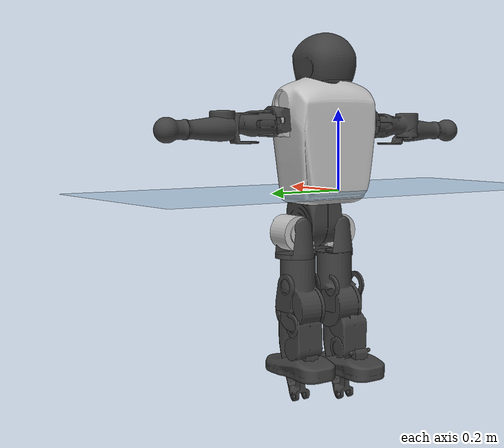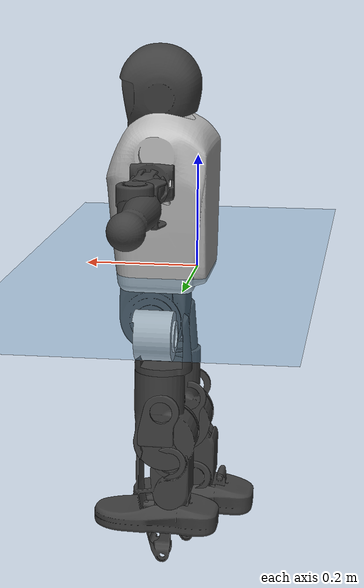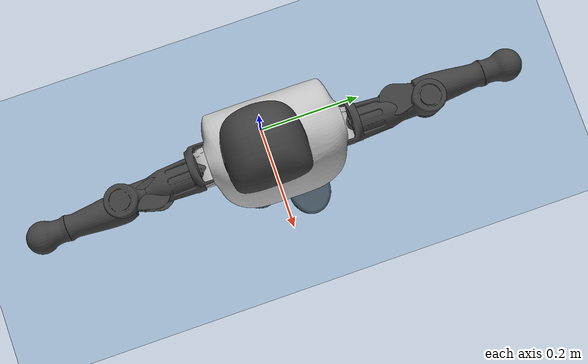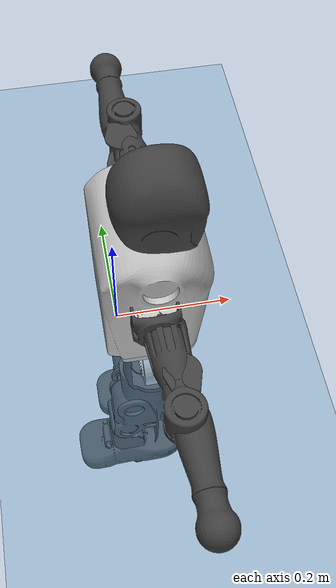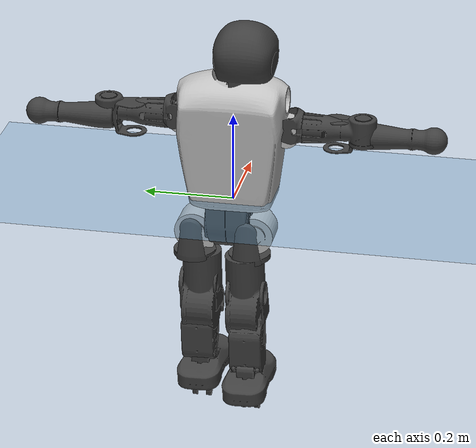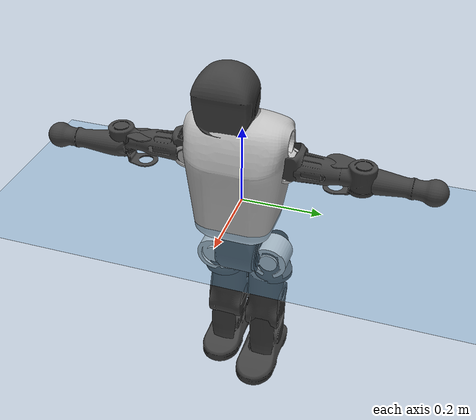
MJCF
<mujoco model="T1">
  <compiler angle="radian" assetdir="assets" balanceinertia="true" inertiafromgeom="false"/>

  <option timestep="0.005" density="1.2" viscosity="2e-05"/>

  <size nkey="1"/>

  <visual>
    <quality shadowsize="8192"/>
    <map shadowclip="0.5"/>
  </visual>

  <default>
    <default class="/">
      <joint armature="0.01" damping="0.01" frictionloss="0.1"/>
      <geom contype="0" conaffinity="0" group="1" solref="-1000 -80"/>
      <site size="0.01 0.005 0.005" group="5"/>
      <general forcelimited="true" biastype="affine" gainprm="25" biasprm="0 -25 -0.6"/>
      <default class="t1">
        <geom rgba="0.25 0.25 0.25 1"/>
        <default class="visual">
          <geom type="mesh" group="2"/>
        </default>
        <default class="collision">
          <geom group="3"/>
        </default>
        <default class="foot">
          <geom size="0.1115 0.05 0.015" type="box" condim="6" group="4" priority="1" solimp="0.015 1 0.015"/>
        </default>
        <default class="reward_collision_sphere">
          <geom group="5" rgba="1 0 0 1"/>
        </default>
      </default>
    </default>
  </default>

  <asset>
    <texture type="skybox" colorspace="auto" name="//unnamed_texture_0" builtin="gradient" rgb1="0.95 0.95 0.95" rgb2="0.95 0.95 0.95" width="100" height="600"/>
    <texture type="2d" colorspace="auto" name="texplane" builtin="checker" rgb1="0.345 0.575 0.748" rgb2="0.345 0.575 0.748" markrgb="1 1 1" width="512" height="512"/>
    <material name="MatPlane" class="/" texture="texplane" texuniform="true" texrepeat="2 2" specular="0.9"/>
    <mesh name="Trunk" class="/" file="Trunk.stl"/>
    <mesh name="H1" class="/" file="H1.stl"/>
    <mesh name="H2" class="/" file="H2.stl"/>
    <mesh name="AL1" class="/" file="AL1.stl"/>
    <mesh name="AL2" class="/" file="AL2.stl"/>
    <mesh name="AL3" class="/" file="AL3.stl"/>
    <mesh name="left_hand_link" class="/" file="left_hand_link.stl"/>
    <mesh name="AR1" class="/" file="AR1.stl"/>
    <mesh name="AR2" class="/" file="AR2.stl"/>
    <mesh name="AR3" class="/" file="AR3.stl"/>
    <mesh name="right_hand_link" class="/" file="right_hand_link.stl"/>
    <mesh name="Waist" class="/" file="Waist.stl"/>
    <mesh name="Hip_Pitch_Left" class="/" file="Hip_Pitch_Left.stl"/>
    <mesh name="Hip_Roll_Left" class="/" file="Hip_Roll_Left.stl"/>
    <mesh name="Hip_Yaw_Left" class="/" file="Hip_Yaw_Left.stl"/>
    <mesh name="Shank_Left" class="/" file="Shank_Left.stl"/>
    <mesh name="Ankle_Cross_Left" class="/" file="Ankle_Cross_Left.stl"/>
    <mesh name="left_foot_link" class="/" file="left_foot_link.stl"/>
    <mesh name="Hip_Pitch_Right" class="/" file="Hip_Pitch_Right.stl"/>
    <mesh name="Hip_Roll_Right" class="/" file="Hip_Roll_Right.stl"/>
    <mesh name="Hip_Yaw_Right" class="/" file="Hip_Yaw_Right.stl"/>
    <mesh name="Shank_Right" class="/" file="Shank_Right.stl"/>
    <mesh name="Ankle_Cross_Right" class="/" file="Ankle_Cross_Right.stl"/>
    <mesh name="right_foot_link" class="/" file="right_foot_link.stl"/>
  </asset>

  <worldbody>
    <geom name="floor" class="/" size="100 100 0.125" type="plane" group="0" material="MatPlane"/>
    <light name="toplight_shadow" class="/" pos="0 0 5" dir="0.0990148 0.0990148 -0.990148" type="directional" ambient="0.04 0.04 0.04" diffuse="0.55 0.55 0.55" specular="0.12 0.12 0.12"/>
    <light name="toplight_fill" class="/" pos="0 0 5" dir="0.0990148 0.0990148 -0.990148" type="directional" castshadow="false" ambient="0.04 0.04 0.04" diffuse="0.3 0.3 0.3" specular="0.08 0.08 0.08"/>
    <body name="trunk" childclass="t1" pos="0.00167582 0.008754 0.000838728" quat="0.999974 -0.0056006 -0.00447916 -0.00121325">
      <inertial pos="0.0638085 0.0124166 0.0796575" quat="0.999883 -0.00344867 -0.0116169 0.0093115" mass="5.77432" diaginertia="0.0699323 0.0108581 0.00933932"/>
      <joint name="//unnamed_joint_0" type="free" armature="0" damping="0" frictionloss="0"/>
      <geom name="//unnamed_geom_1" class="visual" rgba="0.76 0.76 0.76 1" mesh="Trunk"/>
      <geom name="//unnamed_geom_2" class="collision" size="0.05714 0.0761867 0.11428" pos="0.056501 0 0.0814155" type="box"/>
      <geom name="//unnamed_geom_3" class="reward_collision_sphere" size="0.0876147" pos="0.056501 0 0.0678463"/>
      <geom name="//unnamed_geom_4" class="reward_collision_sphere" size="0.011428" pos="0.056501 0.0565637 0"/>
      <geom name="//unnamed_geom_5" class="reward_collision_sphere" size="0.011428" pos="0.056501 -0.0565637 0"/>
      <geom name="//unnamed_geom_6" class="reward_collision_sphere" size="0.011428" pos="0.056501 0.0712037 0.122123"/>
      <geom name="//unnamed_geom_7" class="reward_collision_sphere" size="0.011428" pos="0.056501 -0.0712037 0.122123"/>
      <site name="imu" pos="-0.0550556 -0.0249217 0.0552087" size="0.00761867"/>
      <camera name="track" pos="0 -1.33091 0" quat="0.707107 0.707107 0 0" mode="trackcom"/>
      <camera name="ego_camera" pos="0.114885 0 0.284954" quat="-0.5 -0.5 0.5 0.5"/>
      <body name="H1" pos="0.0657679 -0.00847516 0.159289" quat="0.999993 0.00129725 0.00215054 0.00282338">
        <inertial pos="0.00880375 -0.0162727 0.0307122" quat="0.760106 -0.0250127 0.0721837 0.645292" mass="0.202991" diaginertia="0.000186144 3.21329e-05 2.94683e-05"/>
        <joint name="AAHead_yaw" pos="0 0 0" axis="-0.0707373 -0.0133225 0.997406" range="-1.45504 1.65211" armature="0.0111552" damping="0" frictionloss="0.0749154"/>
        <geom name="//unnamed_geom_8" class="visual" mesh="H1"/>
        <body name="H2" pos="-0.0107753 -0.0147033 0.0433477" quat="0.999998 0.000340048 -0.00086447 -0.00177121">
          <inertial pos="0.00656418 -0.0130272 0.0689131" quat="0.988365 0.100854 -0.0638606 -0.0942643" mass="0.288599" diaginertia="0.001293 0.000239005 0.000257381"/>
          <joint name="Head_pitch" pos="0 0 0" axis="0.036936 -0.999283 0.00833811" range="-1.19684 0.350546" armature="0.0131979" damping="0" frictionloss="0.0130165"/>
          <geom name="//unnamed_geom_9" class="visual" mesh="H2"/>
          <geom name="//unnamed_geom_10" class="collision" size="0.0609493" pos="0.00941683 0 0.0746309"/>
          <geom name="//unnamed_geom_11" class="reward_collision_sphere" size="0.068568" pos="0.0188337 0 0.0678463"/>
        </body>
      </body>
      <body name="AL1" pos="0.0621105 0.0687178 0.163711" quat="1 0.000266513 6.55927e-05 -7.94994e-05">
        <inertial pos="0.0142578 0.0270445 0.00462705" quat="0.515675 0.493351 -0.501492 0.48907" mass="0.247855" diaginertia="0.00105786 0.000175384 5.06768e-05"/>
        <joint name="Left_Shoulder_Pitch" pos="0 0 0" axis="-0.07118 0.997196 -0.0231097" range="-3.30807 1.39735" armature="0.0091814" damping="0" frictionloss="0.0751216"/>
        <geom name="//unnamed_geom_12" class="visual" rgba="0.76 0.76 0.76 1" mesh="AL1"/>
        <body name="AL2" pos="-0.00295121 0.0295055 0.0110984" quat="1 -0.000314996 -0.000316245 2.45158e-05">
          <inertial pos="-0.0052964 0.0341445 0.0128687" quat="0.458696 0.55926 -0.487023 0.489525" mass="0.0637801" diaginertia="0.000290833 4.46257e-05 2.44092e-05"/>
          <joint name="Left_Shoulder_Roll" pos="0 0 0" axis="-0.999078 0.0141821 0.0405277" range="-1.54589 1.671" armature="0.00718842" damping="0" frictionloss="0.0769846"/>
          <geom name="//unnamed_geom_13" class="visual" mesh="AL2"/>
          <body name="AL3" pos="0.00369363 0.040695 -0.00756958" quat="1 -0.000104738 0.000748158 9.7703e-05">
            <inertial pos="0.00961975 0.057095 -0.00318248" quat="0.692063 0.71809 -0.0601631 0.0421363" mass="0.47257" diaginertia="0.00895652 0.00177281 0.000113371"/>
            <joint name="Left_Elbow_Pitch" pos="0 0 0" axis="-0.00402797 -0.99994 -0.0101912" range="-2.14466 2.34649" armature="0.00759122" damping="0" frictionloss="0.0173204"/>
            <geom name="//unnamed_geom_14" class="visual" mesh="AL3"/>
            <geom name="//unnamed_geom_15" class="collision" size="0.022856 0.05714" pos="0 0.0332728 0" quat="0.707105 0.707108 0 0" type="cylinder"/>
            <geom name="//unnamed_geom_16" class="reward_collision_sphere" size="0.0274272"/>
            <body name="left_hand_link" pos="-0.0135049 0.087431 -0.010395" quat="0.999998 -0.000934356 -0.0014238 -0.00124946">
              <inertial pos="-0.0137575 0.0838483 0.0135619" quat="0.693051 0.720443 0.000772567 -0.0253324" mass="0.142005" diaginertia="0.00598624 0.000987535 2.59421e-05"/>
              <joint name="Left_Elbow_Yaw" pos="0 0 0" axis="0.0107371 0.00702324 0.999918" stiffness="0.0410692" range="-2.43009 0.101965" armature="0.00321947" damping="0" frictionloss="0.0756895"/>
              <geom name="//unnamed_geom_17" class="visual" mesh="left_hand_link"/>
              <geom name="//unnamed_geom_18" class="collision" size="0.022856 0.0666633" pos="0 0.0865092 0" quat="0.707105 0.707108 0 0" type="cylinder"/>
              <geom name="//unnamed_geom_19" class="reward_collision_sphere" size="0.0380933"/>
              <geom name="//unnamed_geom_20" class="reward_collision_sphere" size="0.0266653" pos="0 0.0732001 0"/>
              <geom name="//unnamed_geom_21" class="reward_collision_sphere" size="0.0266653" pos="0 0.143073 0"/>
            </body>
          </body>
        </body>
      </body>
      <body name="AR1" pos="0.0525225 -0.0745103 0.14912" quat="0.999964 0.00492186 0.00427769 0.00549484">
        <inertial pos="-0.000821969 -0.0223522 -0.00789546" quat="0.505637 0.494106 -0.502124 0.498058" mass="0.19244" diaginertia="0.0009443 0.000141167 3.37225e-05"/>
        <joint name="Right_Shoulder_Pitch" pos="0 0 0" axis="0.0208706 -0.999634 -0.017193" range="-1.4278 3.30886" armature="0.010064" damping="0.00519224" frictionloss="0.106682"/>
        <geom name="//unnamed_geom_22" class="visual" rgba="0.76 0.76 0.76 1" mesh="AR1"/>
        <body name="AR2" pos="-0.00664885 -0.0268432 0.0148556" quat="0.99998 0.000775953 0.00371422 0.00506696">
          <inertial pos="0.0108883 -0.0322983 0.00619839" quat="0.473883 0.495081 -0.549942 0.477383" mass="0.0796277" diaginertia="0.000334536 4.54646e-05 2.89068e-05"/>
          <joint name="Right_Shoulder_Roll" pos="0 0 0" axis="-0.998596 -0.0237523 -0.0473545" stiffness="0.0527403" range="-1.57447 1.74119" armature="0.00779665" damping="0.0700163" frictionloss="0.0889401"/>
          <geom name="//unnamed_geom_23" class="visual" mesh="AR2"/>
          <body name="AR3" pos="0.00995284 -0.0397942 -0.00668537" quat="0.999977 0.000919314 0.00429243 0.00519613">
            <inertial pos="-0.0165275 -0.0584587 -0.00755048" quat="0.713011 0.700857 -0.000892455 0.0203556" mass="0.427843" diaginertia="0.00712349 0.00145918 7.9622e-05"/>
            <joint name="Right_Elbow_Pitch" pos="0 0 0" axis="0.00972997 0.99891 -0.0456584" stiffness="0.0200862" range="-2.12746 2.60867" armature="0.00634993" damping="0" frictionloss="0.0433304"/>
            <geom name="//unnamed_geom_24" class="visual" mesh="AR3"/>
            <geom name="//unnamed_geom_25" class="collision" size="0.022856 0.05714" pos="0 -0.0332728 0" quat="0.707105 0.707108 0 0" type="cylinder"/>
            <geom name="//unnamed_geom_26" class="reward_collision_sphere" size="0.0274272"/>
            <body name="right_hand_link" pos="0.00864393 -0.0874275 -0.013245" quat="0.99998 0.0022032 -0.0057246 0.00158597">
              <inertial pos="-0.0154926 -0.0795495 0.0141559" quat="0.70616 0.708052 4.51475e-05 -1.60034e-05" mass="0.160925" diaginertia="0.00878314 0.0014413 3.03478e-05"/>
              <joint name="Right_Elbow_Yaw" pos="0 0 0" axis="0.00075466 -0.00247281 0.999997" stiffness="0.0214216" range="-0.0295604 2.71133" armature="0.00993555" damping="0" frictionloss="0.078184"/>
              <geom name="//unnamed_geom_27" class="visual" mesh="right_hand_link"/>
              <geom name="//unnamed_geom_28" class="collision" size="0.022856 0.0666633" pos="0 -0.0865092 0" quat="0.707105 0.707108 0 0" type="cylinder"/>
              <geom name="//unnamed_geom_29" class="reward_collision_sphere" size="0.0380933"/>
              <geom name="//unnamed_geom_30" class="reward_collision_sphere" size="0.0266653" pos="0 -0.0732001 0"/>
              <geom name="//unnamed_geom_31" class="reward_collision_sphere" size="0.0266653" pos="0 -0.143073 0"/>
            </body>
          </body>
        </body>
      </body>
      <body name="Waist" pos="0.0697576 0.0138039 -0.0872789" quat="0.999999 0.000302705 -0.000380879 -0.00113083">
        <inertial pos="-0.00275684 -0.0123461 0.00865969" quat="0.986302 0.0033239 -0.155696 0.0543715" mass="1.49099" diaginertia="0.00481112 0.00086962 0.000881975"/>
        <joint name="Waist" pos="0 0 0" axis="0.0283213 0.0198918 0.999401" stiffness="0.0388954" range="-1.40877 1.71951" armature="0.0070243" damping="0.0855736" frictionloss="0.0393588"/>
        <geom name="//unnamed_geom_32" class="visual" mesh="Waist"/>
        <body name="Hip_Pitch_Left" pos="-0.00966507 0.0765919 0.00220932" quat="1 8.60159e-05 0.000168235 6.82973e-05">
          <inertial pos="0.00841959 -0.00810534 0.00166787" quat="0.977866 0.205159 0.0370542 -0.0177424" mass="0.483025" diaginertia="0.00147399 0.000212355 0.000196985"/>
          <joint name="Left_Hip_Pitch" pos="0 0 0" axis="-0.00564653 0.99929 0.0372611" range="-1.88286 1.30283" armature="0.0101201" damping="0.0636958" frictionloss="0.0725621"/>
          <geom name="//unnamed_geom_33" class="visual" rgba="0.76 0.76 0.76 1" mesh="Hip_Pitch_Left"/>
          <body name="Hip_Roll_Left" pos="-0.0140426 0.00153286 -0.00337907" quat="0.999999 0.00151746 -0.000216534 0.000599093">
            <inertial pos="0.00595471 -0.000315086 -0.0235963" quat="0.698913 -0.00853147 -0.01778 0.714935" mass="0.130308" diaginertia="0.000905773 0.000191364 7.24161e-05"/>
            <joint name="Left_Hip_Roll" pos="0 0 0" axis="-0.999209 -0.0388504 0.00844599" stiffness="0.0701529" range="-1.41428 -0.0900396" armature="0.00668083" damping="0" frictionloss="0.0645621"/>
            <geom name="//unnamed_geom_34" class="visual" mesh="Hip_Roll_Left"/>
            <geom name="//unnamed_geom_35" class="reward_collision_sphere" size="0.0419027"/>
            <body name="Hip_Yaw_Left" pos="0.00632654 -0.0149912 -0.070831" quat="1 -0.000151205 -0.000406251 -0.000876122">
              <inertial pos="0.00255869 0.00142575 -0.0674755" quat="0.662399 -0.0656282 -0.0699254 0.742988" mass="0.984303" diaginertia="0.0156005 0.00350484 0.000296002"/>
              <joint name="Left_Hip_Yaw" pos="0 0 0" axis="-0.00564061 -0.00933837 -0.99994" range="-0.932097 0.672363" armature="0.00346231" damping="0.0956367" frictionloss="0.0765023"/>
              <geom name="//unnamed_geom_36" class="visual" mesh="Hip_Yaw_Left"/>
              <geom name="//unnamed_geom_37" class="collision" size="0.0380933 0.0609493" type="cylinder"/>
              <body name="Shank_Left" pos="-0.00950543 0.00330848 -0.0770656" quat="0.999991 -0.00384434 0.00132285 0.000889217">
                <inertial pos="-0.00450001 0.00207796 -0.0714608" quat="0.997827 0.0141651 -0.00457622 0.0641878" mass="0.71376" diaginertia="0.0242506 0.00553112 0.000340642"/>
                <joint name="Left_Knee_Pitch" pos="0 0 0" axis="0.00228072 0.999961 -0.00857611" range="-0.191964 2.34873" armature="0.00780481" damping="0.0328321" frictionloss="0.0991679"/>
                <geom name="//unnamed_geom_38" class="visual" mesh="Shank_Left"/>
                <geom name="//unnamed_geom_39" class="collision" size="0.0380933 0.05714" pos="0 0 -0.0814155" type="cylinder"/>
                <geom name="//unnamed_geom_40" class="reward_collision_sphere" size="0.0495213"/>
                <body name="Ankle_Cross_Left" pos="0.0054448 0.00411823 -0.177915" quat="0.999997 -0.000943788 -0.000213759 -0.00237182">
                  <inertial pos="0.0110568 -0.0145515 -0.00586869" quat="0.442807 0.551152 0.551248 0.443033" mass="0.0370548" diaginertia="1.9084e-05 3.98938e-06 1.61094e-06"/>
                  <joint name="Left_Ankle_Pitch" pos="0 0 0" axis="0.0150319 0.997979 -0.0617362" range="-0.66217 0.249474" armature="0.0126753" damping="0" frictionloss="0.0396501"/>
                  <geom name="//unnamed_geom_41" class="visual" mesh="Ankle_Cross_Left"/>
                  <body name="left_foot_link" pos="-0.000808635 -0.00999586 -0.0205411" quat="0.99997 -0.00284166 -0.00718062 -0.0011384">
                    <inertial pos="0.0142602 0.00013045 0.000965977" quat="-0.00603943 0.585044 -0.0095606 0.810922" mass="0.350398" diaginertia="0.00180577 0.000299607 0.000272421"/>
                    <joint name="Left_Ankle_Roll" pos="0 0 0" axis="-1 -2.16705e-05 0.000309849" stiffness="0.0667467" range="-0.16203 0.73352" armature="0.00362067" damping="0.0087467" frictionloss="0.130866"/>
                    <geom name="//unnamed_geom_42" class="visual" mesh="left_foot_link"/>
                    <geom name="left_foot" class="foot" size="0.0926482 0.0531026 0.0119416" pos="0.00941683 0 -0.0101769"/>
                    <geom name="//unnamed_geom_44" class="reward_collision_sphere" size="0.0396171" pos="0.00941683 0 -0.0101769"/>
                    <geom name="//unnamed_geom_45" class="reward_collision_sphere" size="0.022856" pos="0.0894598 -0.0153055 -0.0101769"/>
                    <geom name="//unnamed_geom_46" class="reward_collision_sphere" size="0.022856" pos="-0.0659178 -0.0153055 -0.0101769"/>
                    <site name="left_foot" class="foot" pos="0.00941683 0 -0.0101769" size="0.00761867"/>
                  </body>
                </body>
              </body>
            </body>
          </body>
        </body>
        <body name="Hip_Pitch_Right" pos="-0.00272567 -0.0589637 -0.00103677" quat="0.999977 -0.00415516 -0.00368814 0.00385194">
          <inertial pos="-0.00732563 0.0168548 -0.0223059" quat="0.973813 -0.22669 0.0131786 0.011263" mass="0.4444" diaginertia="0.00124631 0.000150662 0.000161448"/>
          <joint name="Right_Hip_Pitch" pos="0 0 0" axis="0.00143811 -0.999999 -0.000627725" stiffness="0.0122258" range="-1.42891 1.73703" armature="0.0029623" damping="0" frictionloss="0.105678"/>
          <geom name="//unnamed_geom_47" class="visual" rgba="0.76 0.76 0.76 1" mesh="Hip_Pitch_Right"/>
          <body name="Hip_Roll_Right" pos="-0.0152623 0.0132816 -0.00361864" quat="0.999998 -0.000935223 0.00149114 -0.000465732">
            <inertial pos="-0.0055093 -0.00716757 -0.0477907" quat="0.703266 0.000399224 -0.00258923 0.710922" mass="0.122522" diaginertia="0.00114881 0.000148169 6.56311e-05"/>
            <joint name="Right_Hip_Roll" pos="0 0 0" axis="-0.999226 0.024849 -0.030483" range="-0.191984 1.88619" armature="0.00660676" damping="0.0827882" frictionloss="0.133796"/>
            <geom name="//unnamed_geom_48" class="visual" mesh="Hip_Roll_Right"/>
            <geom name="//unnamed_geom_49" class="reward_collision_sphere" size="0.0419027"/>
            <body name="Hip_Yaw_Right" pos="-0.0147692 0.00843615 -0.0653051" quat="0.999985 -0.00372284 -0.00411114 -0.000473136">
              <inertial pos="-0.00297073 0.0106224 -0.0712399" quat="0.656261 -0.0157213 -0.0435945 0.75311" mass="0.86543" diaginertia="0.0226968 0.00289247 0.000442796"/>
              <joint name="Right_Hip_Yaw" pos="0 0 0" axis="-0.0594667 0.0555527 -0.996683" range="-1.00446 1.01742" armature="0.0127686" damping="0.0161307" frictionloss="0.0663123"/>
              <geom name="//unnamed_geom_50" class="visual" mesh="Hip_Yaw_Right"/>
              <geom name="//unnamed_geom_51" class="collision" size="0.0380933 0.0609493" type="cylinder"/>
              <body name="Shank_Right" pos="-0.028174 -0.00714035 -0.0856895" quat="0.999987 -0.00142073 -0.00162151 0.00452044">
                <inertial pos="-0.0144535 -0.00150529 -0.0881793" quat="0.997443 0.0266717 0.042532 -0.0508597" mass="0.951417" diaginertia="0.0240821 0.00499487 0.000269877"/>
                <joint name="Right_Knee_Pitch" pos="0 0 0" axis="0.00759888 -0.999806 -0.0181512" stiffness="0.0769879" range="-2.34517 -0.214116" armature="0.00794224" damping="0" frictionloss="0.0840409"/>
                <geom name="//unnamed_geom_52" class="visual" mesh="Shank_Right"/>
                <geom name="//unnamed_geom_53" class="collision" size="0.0380933 0.05714" pos="0 0 -0.0814155" type="cylinder"/>
                <geom name="//unnamed_geom_54" class="reward_collision_sphere" size="0.0495213"/>
                <body name="Ankle_Cross_Right" pos="-0.00624087 -0.00572485 -0.179396" quat="0.999978 0.00588273 -0.00311898 -0.00048273">
                  <inertial pos="-0.000949902 -0.0123257 -0.00504455" quat="0.443855 0.550765 0.552815 0.440507" mass="0.0320463" diaginertia="2.57162e-05 3.28427e-06 1.85228e-06"/>
                  <joint name="Right_Ankle_Pitch" pos="0 0 0" axis="0.0143303 -0.9985 -0.0528499" range="-0.0166147 0.885283" armature="0.00760531" damping="0" frictionloss="0.0905701"/>
                  <geom name="//unnamed_geom_55" class="visual" mesh="Ankle_Cross_Right"/>
                  <body name="right_foot_link" pos="-0.0121453 0.00245127 -0.0137103" quat="1 -0.000200441 0.0003572 0.000381059">
                    <inertial pos="-0.00106724 -0.0123104 -0.00558566" quat="0.0288115 0.643445 -0.0124233 0.764849" mass="0.201237" diaginertia="0.00179151 0.00026377 0.000242455"/>
                    <joint name="Right_Ankle_Roll" pos="0 0 0" axis="-0.999633 -0.0270044 -0.00195466" stiffness="0.00305132" range="-0.356479 0.630065" armature="0.00617318" damping="0.00159265" frictionloss="0.135333"/>
                    <geom name="//unnamed_geom_56" class="visual" mesh="right_foot_link"/>
                    <geom name="right_foot" class="foot" size="0.126795 0.0294443 0.0122487" pos="0.00941683 0 -0.0101769"/>
                    <geom name="//unnamed_geom_58" class="reward_collision_sphere" size="0.0304747"/>
                    <geom name="//unnamed_geom_59" class="reward_collision_sphere" size="0.022856" pos="0.00941683 0 -0.0101769"/>
                    <geom name="//unnamed_geom_60" class="reward_collision_sphere" size="0.022856" pos="0.0894598 0.0153055 -0.0101769"/>
                    <geom name="//unnamed_geom_61" class="reward_collision_sphere" size="0.022856" pos="-0.0659178 0.0153055 -0.0101769"/>
                    <site name="right_foot" class="foot" pos="0.00941683 0 -0.0101769" size="0.00761867"/>
                  </body>
                </body>
              </body>
            </body>
          </body>
        </body>
      </body>
    </body>
  </worldbody>

  <contact>
    <pair class="/" geom1="floor" geom2="left_foot" name="//unnamed_contact_0"/>
    <pair class="/" geom1="floor" geom2="right_foot" name="//unnamed_contact_1"/>
  </contact>

  <actuator>
    <general name="AAHead_yaw" class="/" joint="AAHead_yaw" forcerange="-6.5859 6.5859" gainprm="26.5748" biasprm="0 -26.5748 -0.349605"/>
    <general name="Head_pitch" class="/" joint="Head_pitch" forcerange="-4.08401 4.08401" gainprm="26.5748" biasprm="0 -26.5748 -0.349605"/>
    <general name="Left_Shoulder_Pitch" class="/" joint="Left_Shoulder_Pitch" forcerange="-22.3116 22.3116" gainprm="26.5748" biasprm="0 -26.5748 -0.349605"/>
    <general name="Left_Shoulder_Roll" class="/" joint="Left_Shoulder_Roll" forcerange="-13.4834 13.4834" gainprm="26.5748" biasprm="0 -26.5748 -0.349605"/>
    <general name="Left_Elbow_Pitch" class="/" joint="Left_Elbow_Pitch" forcerange="-18.1847 18.1847" gainprm="26.5748" biasprm="0 -26.5748 -0.349605"/>
    <general name="Left_Elbow_Yaw" class="/" joint="Left_Elbow_Yaw" forcerange="-14.2882 14.2882" gainprm="26.5748" biasprm="0 -26.5748 -0.349605"/>
    <general name="Right_Shoulder_Pitch" class="/" joint="Right_Shoulder_Pitch" forcerange="-16.0144 16.0144" gainprm="26.5748" biasprm="0 -26.5748 -0.349605"/>
    <general name="Right_Shoulder_Roll" class="/" joint="Right_Shoulder_Roll" forcerange="-13.0569 13.0569" gainprm="26.5748" biasprm="0 -26.5748 -0.349605"/>
    <general name="Right_Elbow_Pitch" class="/" joint="Right_Elbow_Pitch" forcerange="-18.5409 18.5409" gainprm="26.5748" biasprm="0 -26.5748 -0.349605"/>
    <general name="Right_Elbow_Yaw" class="/" joint="Right_Elbow_Yaw" forcerange="-18.4814 18.4814" gainprm="26.5748" biasprm="0 -26.5748 -0.349605"/>
    <general name="Waist" class="/" joint="Waist" forcerange="-30.7481 30.7481" gainprm="26.5748" biasprm="0 -26.5748 -0.349605"/>
    <general name="Left_Hip_Pitch" class="/" joint="Left_Hip_Pitch" forcerange="-37.098 37.098" gainprm="26.5748" biasprm="0 -26.5748 -0.349605"/>
    <general name="Left_Hip_Roll" class="/" joint="Left_Hip_Roll" forcerange="-30.4468 30.4468" gainprm="26.5748" biasprm="0 -26.5748 -0.349605"/>
    <general name="Left_Hip_Yaw" class="/" joint="Left_Hip_Yaw" forcerange="-30.606 30.606" gainprm="26.5748" biasprm="0 -26.5748 -0.349605"/>
    <general name="Left_Knee_Pitch" class="/" joint="Left_Knee_Pitch" forcerange="-32.5012 32.5012" gainprm="26.5748" biasprm="0 -26.5748 -0.349605"/>
    <general name="Left_Ankle_Pitch" class="/" joint="Left_Ankle_Pitch" forcerange="-6.5905 6.5905" gainprm="26.5748" biasprm="0 -26.5748 -0.349605"/>
    <general name="Left_Ankle_Roll" class="/" joint="Left_Ankle_Roll" forcerange="-17.3593 17.3593" gainprm="26.5748" biasprm="0 -26.5748 -0.349605"/>
    <general name="Right_Hip_Pitch" class="/" joint="Right_Hip_Pitch" forcerange="-32.4104 32.4104" gainprm="26.5748" biasprm="0 -26.5748 -0.349605"/>
    <general name="Right_Hip_Roll" class="/" joint="Right_Hip_Roll" forcerange="-10.9056 10.9056" gainprm="26.5748" biasprm="0 -26.5748 -0.349605"/>
    <general name="Right_Hip_Yaw" class="/" joint="Right_Hip_Yaw" forcerange="-32.9755 32.9755" gainprm="26.5748" biasprm="0 -26.5748 -0.349605"/>
    <general name="Right_Knee_Pitch" class="/" joint="Right_Knee_Pitch" forcerange="-64.0457 64.0457" gainprm="26.5748" biasprm="0 -26.5748 -0.349605"/>
    <general name="Right_Ankle_Pitch" class="/" joint="Right_Ankle_Pitch" forcerange="-16.1338 16.1338" gainprm="26.5748" biasprm="0 -26.5748 -0.349605"/>
    <general name="Right_Ankle_Roll" class="/" joint="Right_Ankle_Roll" forcerange="-5.9168 5.9168" gainprm="26.5748" biasprm="0 -26.5748 -0.349605"/>
  </actuator>

  <sensor>
    <gyro site="imu" name="imu_angular_velocity"/>
    <velocimeter site="imu" name="imu_linear_velocity"/>
    <framelinvel objtype="site" objname="left_foot" name="left_foot_global_linear_velocity"/>
    <framelinvel objtype="site" objname="right_foot" name="right_foot_global_linear_velocity"/>
  </sensor>

  <keyframe>
    <key name="home" qpos="0 0 0.6385 1 0 0 0 0 0 0 1.4 0 -0.4 0 -1.4 0 0.4 0 -0.4 0 0 0.8 -0.4 0 0.4 0 0 -0.8 0.4 0"/>
  </keyframe>
</mujoco>
